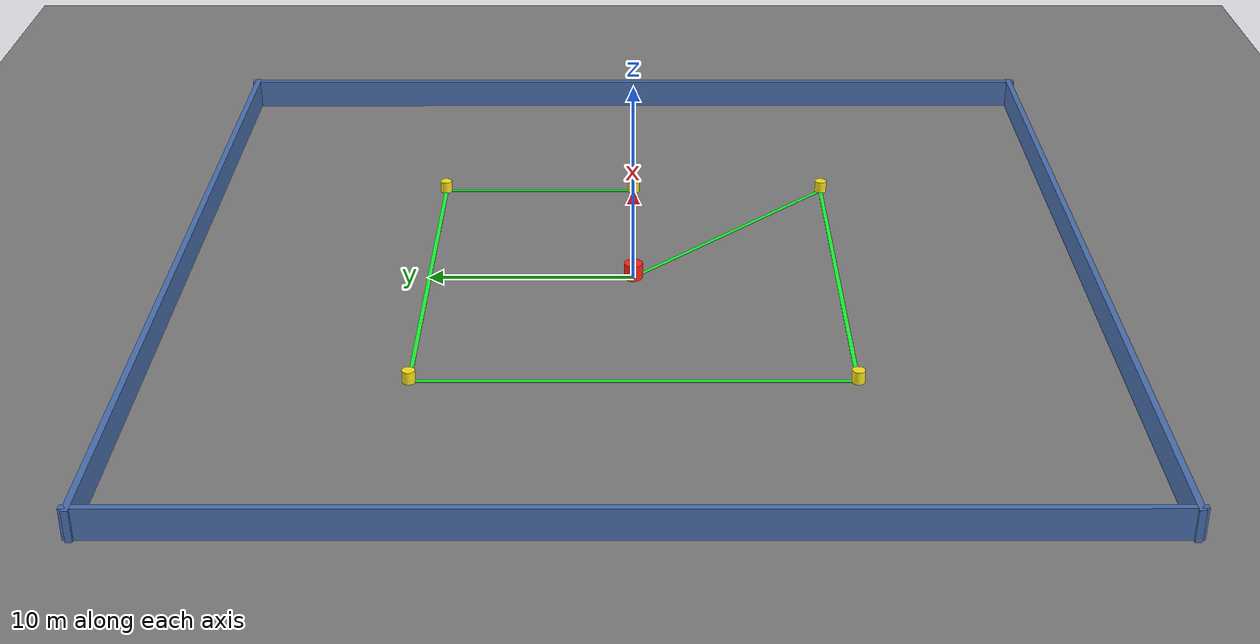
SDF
<?xml version="1.0"?>
<sdf version="1.8">
  <world name="leader_follower_world">

    <physics name="default_physics" type="ode">
      <max_step_size>0.002</max_step_size>
      <real_time_factor>1.0</real_time_factor>
      <real_time_update_rate>500</real_time_update_rate>
    </physics>

    <plugin filename="gz-sim-physics-system" name="gz::sim::systems::Physics" />
    <plugin filename="gz-sim-user-commands-system" name="gz::sim::systems::UserCommands" />
    <plugin filename="gz-sim-scene-broadcaster-system" name="gz::sim::systems::SceneBroadcaster" />
    <plugin filename="gz-sim-imu-system" name="gz::sim::systems::Imu" />
    <plugin filename="gz-sim-navsat-system" name="gz::sim::systems::NavSat" />

    <spherical_coordinates>
      <surface_model>EARTH_WGS84</surface_model>
      <world_frame_orientation>ENU</world_frame_orientation>
      <latitude_deg>36.61002559225</latitude_deg>
      <longitude_deg>127.28772570583</longitude_deg>
      <elevation>0.0</elevation>
      <heading_deg>0.0</heading_deg>
    </spherical_coordinates>

    <!-- Sunlight -->
    <light type="directional" name="sun">
      <cast_shadows>true</cast_shadows>
      <pose>0 0 10 0 0 0</pose>
      <diffuse>0.8 0.8 0.8 1</diffuse>
      <specular>0.2 0.2 0.2 1</specular>
      <attenuation>
        <range>1000</range>
        <constant>0.9</constant>
        <linear>0.01</linear>
        <quadratic>0.001</quadratic>
      </attenuation>
      <direction>-0.5 0.1 -0.9</direction>
    </light>

    <!-- Ground plane -->
    <model name="ground_plane">
      <static>true</static>
      <link name="link">
        <collision name="collision">
          <geometry>
            <plane>
              <normal>0 0 1</normal>
              <size>200 200</size>
            </plane>
          </geometry>
          <surface>
            <friction>
              <ode>
                <mu>1.0</mu>
                <mu2>1.0</mu2>
              </ode>
            </friction>
          </surface>
        </collision>
        <visual name="visual">
          <geometry>
            <plane>
              <normal>0 0 1</normal>
              <size>200 200</size>
            </plane>
          </geometry>
          <material>
            <ambient>0.3 0.3 0.3 1</ambient>
            <diffuse>0.5 0.5 0.5 1</diffuse>
            <specular>0.1 0.1 0.1 1</specular>
          </material>
        </visual>
      </link>
    </model>

    <!-- Walled arena (44 x 44, centred at origin) so the demo has a visible
         "world" the robots drive across. Walls at +/-22 m. Static, no sensors. -->
    <model name="arena_walls">
      <static>true</static>
      <link name="link">
        <!-- North (+Y) -->
        <collision name="n_col"><pose>0 22 0.75 0 0 0</pose>
          <geometry><box><size>44.6 0.3 1.5</size></box></geometry></collision>
        <visual name="n_vis"><pose>0 22 0.75 0 0 0</pose>
          <geometry><box><size>44.6 0.3 1.5</size></box></geometry>
          <material><ambient>0.25 0.35 0.55 1</ambient><diffuse>0.3 0.45 0.7 1</diffuse></material></visual>
        <!-- South (-Y) -->
        <collision name="s_col"><pose>0 -22 0.75 0 0 0</pose>
          <geometry><box><size>44.6 0.3 1.5</size></box></geometry></collision>
        <visual name="s_vis"><pose>0 -22 0.75 0 0 0</pose>
          <geometry><box><size>44.6 0.3 1.5</size></box></geometry>
          <material><ambient>0.25 0.35 0.55 1</ambient><diffuse>0.3 0.45 0.7 1</diffuse></material></visual>
        <!-- East (+X) -->
        <collision name="e_col"><pose>22 0 0.75 0 0 0</pose>
          <geometry><box><size>0.3 44.6 1.5</size></box></geometry></collision>
        <visual name="e_vis"><pose>22 0 0.75 0 0 0</pose>
          <geometry><box><size>0.3 44.6 1.5</size></box></geometry>
          <material><ambient>0.25 0.35 0.55 1</ambient><diffuse>0.3 0.45 0.7 1</diffuse></material></visual>
        <!-- West (-X) -->
        <collision name="w_col"><pose>-22 0 0.75 0 0 0</pose>
          <geometry><box><size>0.3 44.6 1.5</size></box></geometry></collision>
        <visual name="w_vis"><pose>-22 0 0.75 0 0 0</pose>
          <geometry><box><size>0.3 44.6 1.5</size></box></geometry>
          <material><ambient>0.25 0.35 0.55 1</ambient><diffuse>0.3 0.45 0.7 1</diffuse></material></visual>
      </link>
    </model>

    <model name="route_path">
      <static>true</static>
      <link name="link">
        <!-- green loop route on the ground:
             (0,0)->(10,0)->(10,10)->(-10,10)->(-10,-10)->(10,-10)->(0,0) -->
        <visual name="seg1"><pose>5 0 0.02 0 0 0</pose>
          <geometry><box><size>10 0.2 0.02</size></box></geometry>
          <material><ambient>0.1 0.9 0.2 1</ambient><diffuse>0.1 1 0.2 1</diffuse><emissive>0.05 0.4 0.1 1</emissive></material></visual>
        <visual name="seg2"><pose>10 5 0.02 0 0 1.5708</pose>
          <geometry><box><size>10 0.2 0.02</size></box></geometry>
          <material><ambient>0.1 0.9 0.2 1</ambient><diffuse>0.1 1 0.2 1</diffuse><emissive>0.05 0.4 0.1 1</emissive></material></visual>
        <visual name="seg3"><pose>0 10 0.02 0 0 0</pose>
          <geometry><box><size>20 0.2 0.02</size></box></geometry>
          <material><ambient>0.1 0.9 0.2 1</ambient><diffuse>0.1 1 0.2 1</diffuse><emissive>0.05 0.4 0.1 1</emissive></material></visual>
        <visual name="seg4"><pose>-10 0 0.02 0 0 1.5708</pose>
          <geometry><box><size>20 0.2 0.02</size></box></geometry>
          <material><ambient>0.1 0.9 0.2 1</ambient><diffuse>0.1 1 0.2 1</diffuse><emissive>0.05 0.4 0.1 1</emissive></material></visual>
        <visual name="seg5"><pose>0 -10 0.02 0 0 0</pose>
          <geometry><box><size>20 0.2 0.02</size></box></geometry>
          <material><ambient>0.1 0.9 0.2 1</ambient><diffuse>0.1 1 0.2 1</diffuse><emissive>0.05 0.4 0.1 1</emissive></material></visual>
        <visual name="seg6"><pose>5 -5 0.02 0 0 2.3562</pose>
          <geometry><box><size>14.14 0.2 0.02</size></box></geometry>
          <material><ambient>0.1 0.9 0.2 1</ambient><diffuse>0.1 1 0.2 1</diffuse><emissive>0.05 0.4 0.1 1</emissive></material></visual>
        <!-- yellow waypoint posts -->
        <visual name="wp1"><pose>10 0 0.3 0 0 0</pose>
          <geometry><cylinder><radius>0.3</radius><length>0.6</length></cylinder></geometry>
          <material><ambient>1 0.85 0.1 1</ambient><diffuse>1 0.9 0.1 1</diffuse><emissive>0.4 0.35 0.05 1</emissive></material></visual>
        <visual name="wp2"><pose>10 10 0.3 0 0 0</pose>
          <geometry><cylinder><radius>0.3</radius><length>0.6</length></cylinder></geometry>
          <material><ambient>1 0.85 0.1 1</ambient><diffuse>1 0.9 0.1 1</diffuse><emissive>0.4 0.35 0.05 1</emissive></material></visual>
        <visual name="wp3"><pose>-10 10 0.3 0 0 0</pose>
          <geometry><cylinder><radius>0.3</radius><length>0.6</length></cylinder></geometry>
          <material><ambient>1 0.85 0.1 1</ambient><diffuse>1 0.9 0.1 1</diffuse><emissive>0.4 0.35 0.05 1</emissive></material></visual>
        <visual name="wp4"><pose>-10 -10 0.3 0 0 0</pose>
          <geometry><cylinder><radius>0.3</radius><length>0.6</length></cylinder></geometry>
          <material><ambient>1 0.85 0.1 1</ambient><diffuse>1 0.9 0.1 1</diffuse><emissive>0.4 0.35 0.05 1</emissive></material></visual>
        <visual name="wp5"><pose>10 -10 0.3 0 0 0</pose>
          <geometry><cylinder><radius>0.3</radius><length>0.6</length></cylinder></geometry>
          <material><ambient>1 0.85 0.1 1</ambient><diffuse>1 0.9 0.1 1</diffuse><emissive>0.4 0.35 0.05 1</emissive></material></visual>
        <!-- red start/goal post at the centre -->
        <visual name="goal"><pose>0 0 0.4 0 0 0</pose>
          <geometry><cylinder><radius>0.45</radius><length>0.8</length></cylinder></geometry>
          <material><ambient>1 0.15 0.1 1</ambient><diffuse>1 0.15 0.1 1</diffuse><emissive>0.4 0.05 0.03 1</emissive></material></visual>
      </link>
    </model>

  </world>
</sdf>
